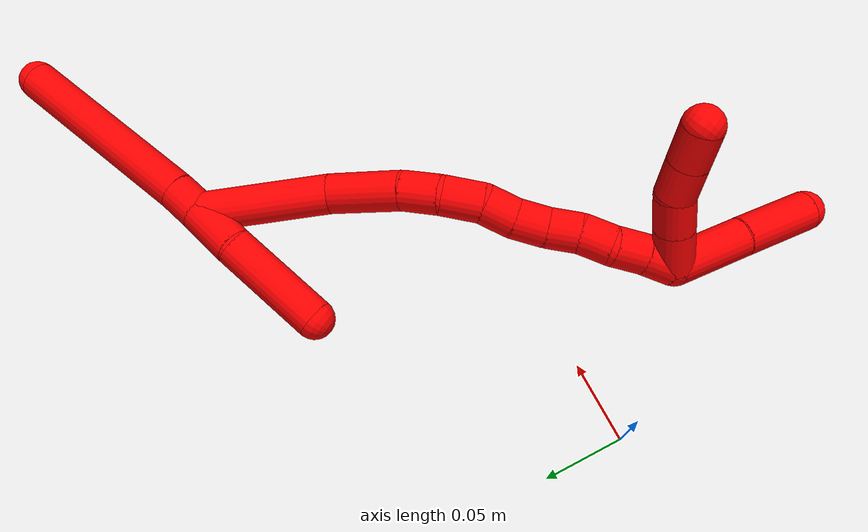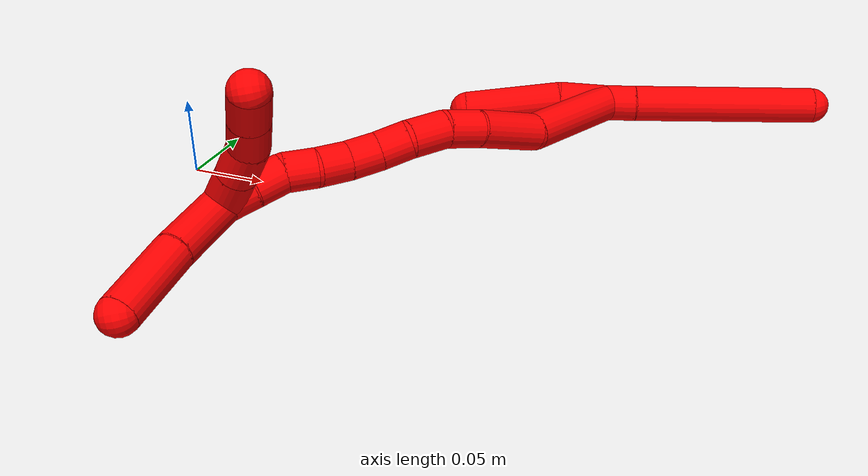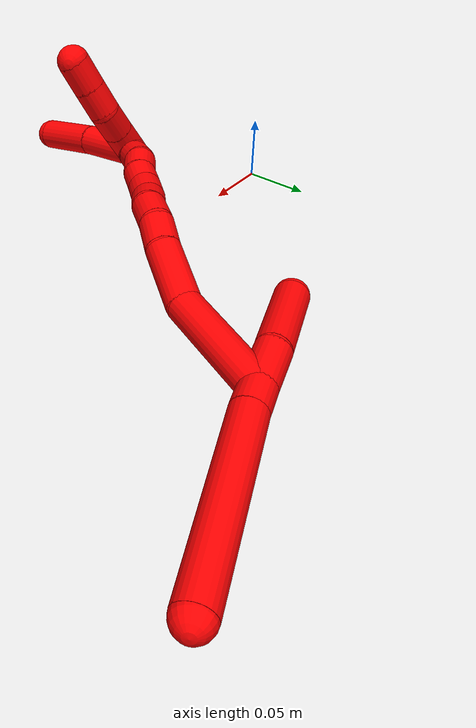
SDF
<sdf version="1.7">
 <world name="default">
  <model name="2">
   <static>0</static>
   <link name="2">
    <collision name="collision-cylinder-e_1_2_8">
     <pose>0.001149 -0.001902 0.010257 0.183331 0.109673 0.010092</pose>
     <geometry><cylinder><radius>0.0125</radius><length>0.02099</length></cylinder></geometry>
     <surface>
      <friction><ode><mu>1.16</mu><mu2>1.16</mu2><slip1>0</slip1><slip2>0</slip2></ode></friction>
      <contact><ode><kp>1e+06</kp><kd>1</kd><max_vel>0</max_vel><min_depth>0.001</min_depth></ode></contact>
     </surface>
    </collision>
    <visual name="visual-cylinder-e_1_2_8">
     <pose>0.001149 -0.001902 0.010257 0.183331 0.109673 0.010092</pose>
     <geometry><cylinder><radius>0.0125</radius><length>0.02099</length></cylinder></geometry>
     <material><ambient>1 0 0 1</ambient></material>
    </visual>
    <collision name="collision-cylinder-e_2_8_6">
     <pose>0.011792 -0.011988 0.08379 0.128633 0.147735 0.009532</pose>
     <geometry><cylinder><radius>0.0125</radius><length>0.12901</length></cylinder></geometry>
     <surface>
      <friction><ode><mu>1.16</mu><mu2>1.16</mu2><slip1>0</slip1><slip2>0</slip2></ode></friction>
      <contact><ode><kp>1e+06</kp><kd>1</kd><max_vel>0</max_vel><min_depth>0.001</min_depth></ode></contact>
     </surface>
    </collision>
    <visual name="visual-cylinder-e_2_8_6">
     <pose>0.011792 -0.011988 0.08379 0.128633 0.147735 0.009532</pose>
     <geometry><cylinder><radius>0.0125</radius><length>0.12901</length></cylinder></geometry>
     <material><ambient>1 0 0 1</ambient></material>
    </visual>
    <collision name="collision-cylinder-e_1_2_9">
     <pose>-0.002209 0.003716 -0.015886 -2.9118 -0.134576 1.05705</pose>
     <geometry><cylinder><radius>0.0125</radius><length>0.032927</length></cylinder></geometry>
     <surface>
      <friction><ode><mu>1.16</mu><mu2>1.16</mu2><slip1>0</slip1><slip2>0</slip2></ode></friction>
      <contact><ode><kp>1e+06</kp><kd>1</kd><max_vel>0</max_vel><min_depth>0.001</min_depth></ode></contact>
     </surface>
    </collision>
    <visual name="visual-cylinder-e_1_2_9">
     <pose>-0.002209 0.003716 -0.015886 -2.9118 -0.134576 1.05705</pose>
     <geometry><cylinder><radius>0.0125</radius><length>0.032927</length></cylinder></geometry>
     <material><ambient>1 0 0 1</ambient></material>
    </visual>
    <collision name="collision-cylinder-e_2_9_5">
     <pose>-0.00462 0.010895 -0.065128 -3.03816 -0.006041 0.116581</pose>
     <geometry><cylinder><radius>0.0125</radius><length>0.067073</length></cylinder></geometry>
     <surface>
      <friction><ode><mu>1.16</mu><mu2>1.16</mu2><slip1>0</slip1><slip2>0</slip2></ode></friction>
      <contact><ode><kp>1e+06</kp><kd>1</kd><max_vel>0</max_vel><min_depth>0.001</min_depth></ode></contact>
     </surface>
    </collision>
    <visual name="visual-cylinder-e_2_9_5">
     <pose>-0.00462 0.010895 -0.065128 -3.03816 -0.006041 0.116581</pose>
     <geometry><cylinder><radius>0.0125</radius><length>0.067073</length></cylinder></geometry>
     <material><ambient>1 0 0 1</ambient></material>
    </visual>
    <collision name="collision-cylinder-e_1_2_10">
     <pose>-0.016681 -0.023309 -0.029139 2.4669 -0.420375 -1.09289</pose>
     <geometry><cylinder><radius>0.0125</radius><length>0.081747</length></cylinder></geometry>
     <surface>
      <friction><ode><mu>1.16</mu><mu2>1.16</mu2><slip1>0</slip1><slip2>0</slip2></ode></friction>
      <contact><ode><kp>1e+06</kp><kd>1</kd><max_vel>0</max_vel><min_depth>0.001</min_depth></ode></contact>
     </surface>
    </collision>
    <visual name="visual-cylinder-e_1_2_10">
     <pose>-0.016681 -0.023309 -0.029139 2.4669 -0.420375 -1.09289</pose>
     <geometry><cylinder><radius>0.0125</radius><length>0.081747</length></cylinder></geometry>
     <material><ambient>1 0 0 1</ambient></material>
    </visual>
    <collision name="collision-cylinder-e_2_10_11">
     <pose>-0.047007 -0.053416 -0.076479 2.78413 -0.612315 -2.10313</pose>
     <geometry><cylinder><radius>0.0125</radius><length>0.047484</length></cylinder></geometry>
     <surface>
      <friction><ode><mu>1.16</mu><mu2>1.16</mu2><slip1>0</slip1><slip2>0</slip2></ode></friction>
      <contact><ode><kp>1e+06</kp><kd>1</kd><max_vel>0</max_vel><min_depth>0.001</min_depth></ode></contact>
     </surface>
    </collision>
    <visual name="visual-cylinder-e_2_10_11">
     <pose>-0.047007 -0.053416 -0.076479 2.78413 -0.612315 -2.10313</pose>
     <geometry><cylinder><radius>0.0125</radius><length>0.047484</length></cylinder></geometry>
     <material><ambient>1 0 0 1</ambient></material>
    </visual>
    <collision name="collision-cylinder-e_3_11_12">
     <pose>-0.066229 -0.063069 -0.105153 2.87549 -0.474513 -2.13055</pose>
     <geometry><cylinder><radius>0.0125</radius><length>0.024409</length></cylinder></geometry>
     <surface>
      <friction><ode><mu>1.16</mu><mu2>1.16</mu2><slip1>0</slip1><slip2>0</slip2></ode></friction>
      <contact><ode><kp>1e+06</kp><kd>1</kd><max_vel>0</max_vel><min_depth>0.001</min_depth></ode></contact>
     </surface>
    </collision>
    <visual name="visual-cylinder-e_3_11_12">
     <pose>-0.066229 -0.063069 -0.105153 2.87549 -0.474513 -2.13055</pose>
     <geometry><cylinder><radius>0.0125</radius><length>0.024409</length></cylinder></geometry>
     <material><ambient>1 0 0 1</ambient></material>
    </visual>
    <collision name="collision-cylinder-e_4_12_13">
     <pose>-0.074795 -0.070457 -0.127032 2.76331 -0.238889 -1.11999</pose>
     <geometry><cylinder><radius>0.0125</radius><length>0.025263</length></cylinder></geometry>
     <surface>
      <friction><ode><mu>1.16</mu><mu2>1.16</mu2><slip1>0</slip1><slip2>0</slip2></ode></friction>
      <contact><ode><kp>1e+06</kp><kd>1</kd><max_vel>0</max_vel><min_depth>0.001</min_depth></ode></contact>
     </surface>
    </collision>
    <visual name="visual-cylinder-e_4_12_13">
     <pose>-0.074795 -0.070457 -0.127032 2.76331 -0.238889 -1.11999</pose>
     <geometry><cylinder><radius>0.0125</radius><length>0.025263</length></cylinder></geometry>
     <material><ambient>1 0 0 1</ambient></material>
    </visual>
    <collision name="collision-cylinder-e_5_13_14">
     <pose>-0.077671 -0.077474 -0.148316 2.89522 0.011059 0.089263</pose>
     <geometry><cylinder><radius>0.0125</radius><length>0.020376</length></cylinder></geometry>
     <surface>
      <friction><ode><mu>1.16</mu><mu2>1.16</mu2><slip1>0</slip1><slip2>0</slip2></ode></friction>
      <contact><ode><kp>1e+06</kp><kd>1</kd><max_vel>0</max_vel><min_depth>0.001</min_depth></ode></contact>
     </surface>
    </collision>
    <visual name="visual-cylinder-e_5_13_14">
     <pose>-0.077671 -0.077474 -0.148316 2.89522 0.011059 0.089263</pose>
     <geometry><cylinder><radius>0.0125</radius><length>0.020376</length></cylinder></geometry>
     <material><ambient>1 0 0 1</ambient></material>
    </visual>
    <collision name="collision-cylinder-e_6_14_15">
     <pose>-0.079246 -0.083218 -0.167833 2.81539 -0.164425 -0.928423</pose>
     <geometry><cylinder><radius>0.0125</radius><length>0.020626</length></cylinder></geometry>
     <surface>
      <friction><ode><mu>1.16</mu><mu2>1.16</mu2><slip1>0</slip1><slip2>0</slip2></ode></friction>
      <contact><ode><kp>1e+06</kp><kd>1</kd><max_vel>0</max_vel><min_depth>0.001</min_depth></ode></contact>
     </surface>
    </collision>
    <visual name="visual-cylinder-e_6_14_15">
     <pose>-0.079246 -0.083218 -0.167833 2.81539 -0.164425 -0.928423</pose>
     <geometry><cylinder><radius>0.0125</radius><length>0.020626</length></cylinder></geometry>
     <material><ambient>1 0 0 1</ambient></material>
    </visual>
    <collision name="collision-cylinder-e_7_15_16">
     <pose>-0.083985 -0.08979 -0.18643 2.78761 -0.309157 -1.43333</pose>
     <geometry><cylinder><radius>0.0125</radius><length>0.020055</length></cylinder></geometry>
     <surface>
      <friction><ode><mu>1.16</mu><mu2>1.16</mu2><slip1>0</slip1><slip2>0</slip2></ode></friction>
      <contact><ode><kp>1e+06</kp><kd>1</kd><max_vel>0</max_vel><min_depth>0.001</min_depth></ode></contact>
     </surface>
    </collision>
    <visual name="visual-cylinder-e_7_15_16">
     <pose>-0.083985 -0.08979 -0.18643 2.78761 -0.309157 -1.43333</pose>
     <geometry><cylinder><radius>0.0125</radius><length>0.020055</length></cylinder></geometry>
     <material><ambient>1 0 0 1</ambient></material>
    </visual>
    <collision name="collision-cylinder-e_8_16_17">
     <pose>-0.089135 -0.094596 -0.205065 2.98828 -0.211201 -1.88745</pose>
     <geometry><cylinder><radius>0.0125</radius><length>0.020024</length></cylinder></geometry>
     <surface>
      <friction><ode><mu>1.16</mu><mu2>1.16</mu2><slip1>0</slip1><slip2>0</slip2></ode></friction>
      <contact><ode><kp>1e+06</kp><kd>1</kd><max_vel>0</max_vel><min_depth>0.001</min_depth></ode></contact>
     </surface>
    </collision>
    <visual name="visual-cylinder-e_8_16_17">
     <pose>-0.089135 -0.094596 -0.205065 2.98828 -0.211201 -1.88745</pose>
     <geometry><cylinder><radius>0.0125</radius><length>0.020024</length></cylinder></geometry>
     <material><ambient>1 0 0 1</ambient></material>
    </visual>
    <collision name="collision-cylinder-e_9_17_18">
     <pose>-0.091753 -0.100436 -0.223738 2.69173 -0.051928 -0.22604</pose>
     <geometry><cylinder><radius>0.0125</radius><length>0.020013</length></cylinder></geometry>
     <surface>
      <friction><ode><mu>1.16</mu><mu2>1.16</mu2><slip1>0</slip1><slip2>0</slip2></ode></friction>
      <contact><ode><kp>1e+06</kp><kd>1</kd><max_vel>0</max_vel><min_depth>0.001</min_depth></ode></contact>
     </surface>
    </collision>
    <visual name="visual-cylinder-e_9_17_18">
     <pose>-0.091753 -0.100436 -0.223738 2.69173 -0.051928 -0.22604</pose>
     <geometry><cylinder><radius>0.0125</radius><length>0.020013</length></cylinder></geometry>
     <material><ambient>1 0 0 1</ambient></material>
    </visual>
    <collision name="collision-cylinder-e_10_18_1">
     <pose>-0.092028 -0.108448 -0.24204 2.76615 0.024452 0.128552</pose>
     <geometry><cylinder><radius>0.0125</radius><length>0.020004</length></cylinder></geometry>
     <surface>
      <friction><ode><mu>1.16</mu><mu2>1.16</mu2><slip1>0</slip1><slip2>0</slip2></ode></friction>
      <contact><ode><kp>1e+06</kp><kd>1</kd><max_vel>0</max_vel><min_depth>0.001</min_depth></ode></contact>
     </surface>
    </collision>
    <visual name="visual-cylinder-e_10_18_1">
     <pose>-0.092028 -0.108448 -0.24204 2.76615 0.024452 0.128552</pose>
     <geometry><cylinder><radius>0.0125</radius><length>0.020004</length></cylinder></geometry>
     <material><ambient>1 0 0 1</ambient></material>
    </visual>
    <collision name="collision-cylinder-e_1_1_19">
     <pose>-0.098089 -0.132309 -0.263269 2.10428 -0.26267 -0.454851</pose>
     <geometry><cylinder><radius>0.0125</radius><length>0.048571</length></cylinder></geometry>
     <surface>
      <friction><ode><mu>1.16</mu><mu2>1.16</mu2><slip1>0</slip1><slip2>0</slip2></ode></friction>
      <contact><ode><kp>1e+06</kp><kd>1</kd><max_vel>0</max_vel><min_depth>0.001</min_depth></ode></contact>
     </surface>
    </collision>
    <visual name="visual-cylinder-e_1_1_19">
     <pose>-0.098089 -0.132309 -0.263269 2.10428 -0.26267 -0.454851</pose>
     <geometry><cylinder><radius>0.0125</radius><length>0.048571</length></cylinder></geometry>
     <material><ambient>1 0 0 1</ambient></material>
    </visual>
    <collision name="collision-cylinder-e_2_19_4">
     <pose>-0.10906 -0.174463 -0.287733 2.08954 -0.182396 -0.312462</pose>
     <geometry><cylinder><radius>0.0125</radius><length>0.051429</length></cylinder></geometry>
     <surface>
      <friction><ode><mu>1.16</mu><mu2>1.16</mu2><slip1>0</slip1><slip2>0</slip2></ode></friction>
      <contact><ode><kp>1e+06</kp><kd>1</kd><max_vel>0</max_vel><min_depth>0.001</min_depth></ode></contact>
     </surface>
    </collision>
    <visual name="visual-cylinder-e_2_19_4">
     <pose>-0.10906 -0.174463 -0.287733 2.08954 -0.182396 -0.312462</pose>
     <geometry><cylinder><radius>0.0125</radius><length>0.051429</length></cylinder></geometry>
     <material><ambient>1 0 0 1</ambient></material>
    </visual>
    <collision name="collision-cylinder-e_1_1_20">
     <pose>-0.103694 -0.112635 -0.243845 0.069301 -1.00793 -0.038227</pose>
     <geometry><cylinder><radius>0.0125</radius><length>0.028166</length></cylinder></geometry>
     <surface>
      <friction><ode><mu>1.16</mu><mu2>1.16</mu2><slip1>0</slip1><slip2>0</slip2></ode></friction>
      <contact><ode><kp>1e+06</kp><kd>1</kd><max_vel>0</max_vel><min_depth>0.001</min_depth></ode></contact>
     </surface>
    </collision>
    <visual name="visual-cylinder-e_1_1_20">
     <pose>-0.103694 -0.112635 -0.243845 0.069301 -1.00793 -0.038227</pose>
     <geometry><cylinder><radius>0.0125</radius><length>0.028166</length></cylinder></geometry>
     <material><ambient>1 0 0 1</ambient></material>
    </visual>
    <collision name="collision-cylinder-e_2_20_21">
     <pose>-0.125821 -0.113421 -0.230098 0.042427 -1.02133 -0.023771</pose>
     <geometry><cylinder><radius>0.0125</radius><length>0.023961</length></cylinder></geometry>
     <surface>
      <friction><ode><mu>1.16</mu><mu2>1.16</mu2><slip1>0</slip1><slip2>0</slip2></ode></friction>
      <contact><ode><kp>1e+06</kp><kd>1</kd><max_vel>0</max_vel><min_depth>0.001</min_depth></ode></contact>
     </surface>
    </collision>
    <visual name="visual-cylinder-e_2_20_21">
     <pose>-0.125821 -0.113421 -0.230098 0.042427 -1.02133 -0.023771</pose>
     <geometry><cylinder><radius>0.0125</radius><length>0.023961</length></cylinder></geometry>
     <material><ambient>1 0 0 1</ambient></material>
    </visual>
    <collision name="collision-cylinder-e_3_21_22">
     <pose>-0.147238 -0.115015 -0.220726 0.402581 -1.27676 -0.300545</pose>
     <geometry><cylinder><radius>0.0125</radius><length>0.023402</length></cylinder></geometry>
     <surface>
      <friction><ode><mu>1.16</mu><mu2>1.16</mu2><slip1>0</slip1><slip2>0</slip2></ode></friction>
      <contact><ode><kp>1e+06</kp><kd>1</kd><max_vel>0</max_vel><min_depth>0.001</min_depth></ode></contact>
     </surface>
    </collision>
    <visual name="visual-cylinder-e_3_21_22">
     <pose>-0.147238 -0.115015 -0.220726 0.402581 -1.27676 -0.300545</pose>
     <geometry><cylinder><radius>0.0125</radius><length>0.023402</length></cylinder></geometry>
     <material><ambient>1 0 0 1</ambient></material>
    </visual>
    <collision name="collision-cylinder-e_4_22_3">
     <pose>-0.170178 -0.117642 -0.214422 0.387236 -1.28587 -0.291678</pose>
     <geometry><cylinder><radius>0.0125</radius><length>0.02447</length></cylinder></geometry>
     <surface>
      <friction><ode><mu>1.16</mu><mu2>1.16</mu2><slip1>0</slip1><slip2>0</slip2></ode></friction>
      <contact><ode><kp>1e+06</kp><kd>1</kd><max_vel>0</max_vel><min_depth>0.001</min_depth></ode></contact>
     </surface>
    </collision>
    <visual name="visual-cylinder-e_4_22_3">
     <pose>-0.170178 -0.117642 -0.214422 0.387236 -1.28587 -0.291678</pose>
     <geometry><cylinder><radius>0.0125</radius><length>0.02447</length></cylinder></geometry>
     <material><ambient>1 0 0 1</ambient></material>
    </visual>
    <collision name="collision-sphere-3">
     <pose>-0.18192 -0.118941 -0.211237 0 -0 0</pose>
     <geometry><sphere><radius>0.0125</radius></sphere></geometry>
     <surface>
      <friction><ode><mu>1.16</mu><mu2>1.16</mu2><slip1>0</slip1><slip2>0</slip2></ode></friction>
      <contact><ode><kp>1e+06</kp><kd>1</kd><max_vel>0</max_vel><min_depth>0.001</min_depth></ode></contact>
     </surface>
    </collision>
    <visual name="visual-sphere-3">
     <pose>-0.18192 -0.118941 -0.211237 0 -0 0</pose>
     <geometry><sphere><radius>0.0125</radius></sphere></geometry>
     <material><ambient>1 0 0 1</ambient></material>
    </visual>
    <collision name="collision-sphere-22">
     <pose>-0.158437 -0.116344 -0.217606 0 -0 0</pose>
     <geometry><sphere><radius>0.0125</radius></sphere></geometry>
     <surface>
      <friction><ode><mu>1.16</mu><mu2>1.16</mu2><slip1>0</slip1><slip2>0</slip2></ode></friction>
      <contact><ode><kp>1e+06</kp><kd>1</kd><max_vel>0</max_vel><min_depth>0.001</min_depth></ode></contact>
     </surface>
    </collision>
    <visual name="visual-sphere-22">
     <pose>-0.158437 -0.116344 -0.217606 0 -0 0</pose>
     <geometry><sphere><radius>0.0125</radius></sphere></geometry>
     <material><ambient>1 0 0 1</ambient></material>
    </visual>
    <collision name="collision-sphere-21">
     <pose>-0.136039 -0.113686 -0.223846 0 -0 0</pose>
     <geometry><sphere><radius>0.0125</radius></sphere></geometry>
     <surface>
      <friction><ode><mu>1.16</mu><mu2>1.16</mu2><slip1>0</slip1><slip2>0</slip2></ode></friction>
      <contact><ode><kp>1e+06</kp><kd>1</kd><max_vel>0</max_vel><min_depth>0.001</min_depth></ode></contact>
     </surface>
    </collision>
    <visual name="visual-sphere-21">
     <pose>-0.136039 -0.113686 -0.223846 0 -0 0</pose>
     <geometry><sphere><radius>0.0125</radius></sphere></geometry>
     <material><ambient>1 0 0 1</ambient></material>
    </visual>
    <collision name="collision-sphere-20">
     <pose>-0.115604 -0.113155 -0.236349 0 -0 0</pose>
     <geometry><sphere><radius>0.0125</radius></sphere></geometry>
     <surface>
      <friction><ode><mu>1.16</mu><mu2>1.16</mu2><slip1>0</slip1><slip2>0</slip2></ode></friction>
      <contact><ode><kp>1e+06</kp><kd>1</kd><max_vel>0</max_vel><min_depth>0.001</min_depth></ode></contact>
     </surface>
    </collision>
    <visual name="visual-sphere-20">
     <pose>-0.115604 -0.113155 -0.236349 0 -0 0</pose>
     <geometry><sphere><radius>0.0125</radius></sphere></geometry>
     <material><ambient>1 0 0 1</ambient></material>
    </visual>
    <collision name="collision-sphere-4">
     <pose>-0.113724 -0.196424 -0.30027 0 -0 0</pose>
     <geometry><sphere><radius>0.0125</radius></sphere></geometry>
     <surface>
      <friction><ode><mu>1.16</mu><mu2>1.16</mu2><slip1>0</slip1><slip2>0</slip2></ode></friction>
      <contact><ode><kp>1e+06</kp><kd>1</kd><max_vel>0</max_vel><min_depth>0.001</min_depth></ode></contact>
     </surface>
    </collision>
    <visual name="visual-sphere-4">
     <pose>-0.113724 -0.196424 -0.30027 0 -0 0</pose>
     <geometry><sphere><radius>0.0125</radius></sphere></geometry>
     <material><ambient>1 0 0 1</ambient></material>
    </visual>
    <collision name="collision-sphere-10">
     <pose>-0.033361 -0.046618 -0.058278 0 -0 0</pose>
     <geometry><sphere><radius>0.0125</radius></sphere></geometry>
     <surface>
      <friction><ode><mu>1.16</mu><mu2>1.16</mu2><slip1>0</slip1><slip2>0</slip2></ode></friction>
      <contact><ode><kp>1e+06</kp><kd>1</kd><max_vel>0</max_vel><min_depth>0.001</min_depth></ode></contact>
     </surface>
    </collision>
    <visual name="visual-sphere-10">
     <pose>-0.033361 -0.046618 -0.058278 0 -0 0</pose>
     <geometry><sphere><radius>0.0125</radius></sphere></geometry>
     <material><ambient>1 0 0 1</ambient></material>
    </visual>
    <collision name="collision-sphere-5">
     <pose>-0.004823 0.014357 -0.098485 0 -0 0</pose>
     <geometry><sphere><radius>0.0125</radius></sphere></geometry>
     <surface>
      <friction><ode><mu>1.16</mu><mu2>1.16</mu2><slip1>0</slip1><slip2>0</slip2></ode></friction>
      <contact><ode><kp>1e+06</kp><kd>1</kd><max_vel>0</max_vel><min_depth>0.001</min_depth></ode></contact>
     </surface>
    </collision>
    <visual name="visual-sphere-5">
     <pose>-0.004823 0.014357 -0.098485 0 -0 0</pose>
     <geometry><sphere><radius>0.0125</radius></sphere></geometry>
     <material><ambient>1 0 0 1</ambient></material>
    </visual>
    <collision name="collision-sphere-6">
     <pose>0.021287 -0.020173 0.147065 0 -0 0</pose>
     <geometry><sphere><radius>0.0125</radius></sphere></geometry>
     <surface>
      <friction><ode><mu>1.16</mu><mu2>1.16</mu2><slip1>0</slip1><slip2>0</slip2></ode></friction>
      <contact><ode><kp>1e+06</kp><kd>1</kd><max_vel>0</max_vel><min_depth>0.001</min_depth></ode></contact>
     </surface>
    </collision>
    <visual name="visual-sphere-6">
     <pose>0.021287 -0.020173 0.147065 0 -0 0</pose>
     <geometry><sphere><radius>0.0125</radius></sphere></geometry>
     <material><ambient>1 0 0 1</ambient></material>
    </visual>
    <collision name="collision-sphere-9">
     <pose>-0.004418 0.007432 -0.031771 0 -0 0</pose>
     <geometry><sphere><radius>0.0125</radius></sphere></geometry>
     <surface>
      <friction><ode><mu>1.16</mu><mu2>1.16</mu2><slip1>0</slip1><slip2>0</slip2></ode></friction>
      <contact><ode><kp>1e+06</kp><kd>1</kd><max_vel>0</max_vel><min_depth>0.001</min_depth></ode></contact>
     </surface>
    </collision>
    <visual name="visual-sphere-9">
     <pose>-0.004418 0.007432 -0.031771 0 -0 0</pose>
     <geometry><sphere><radius>0.0125</radius></sphere></geometry>
     <material><ambient>1 0 0 1</ambient></material>
    </visual>
    <collision name="collision-sphere-2">
     <geometry><sphere><radius>0.0125</radius></sphere></geometry>
     <surface>
      <friction><ode><mu>1.16</mu><mu2>1.16</mu2><slip1>0</slip1><slip2>0</slip2></ode></friction>
      <contact><ode><kp>1e+06</kp><kd>1</kd><max_vel>0</max_vel><min_depth>0.001</min_depth></ode></contact>
     </surface>
    </collision>
    <visual name="visual-sphere-2">
     <geometry><sphere><radius>0.0125</radius></sphere></geometry>
     <material><ambient>1 0 0 1</ambient></material>
    </visual>
    <collision name="collision-sphere-19">
     <pose>-0.104396 -0.152502 -0.275195 0 -0 0</pose>
     <geometry><sphere><radius>0.0125</radius></sphere></geometry>
     <surface>
      <friction><ode><mu>1.16</mu><mu2>1.16</mu2><slip1>0</slip1><slip2>0</slip2></ode></friction>
      <contact><ode><kp>1e+06</kp><kd>1</kd><max_vel>0</max_vel><min_depth>0.001</min_depth></ode></contact>
     </surface>
    </collision>
    <visual name="visual-sphere-19">
     <pose>-0.104396 -0.152502 -0.275195 0 -0 0</pose>
     <geometry><sphere><radius>0.0125</radius></sphere></geometry>
     <material><ambient>1 0 0 1</ambient></material>
    </visual>
    <collision name="collision-sphere-8">
     <pose>0.002297 -0.003804 0.020515 0 -0 0</pose>
     <geometry><sphere><radius>0.0125</radius></sphere></geometry>
     <surface>
      <friction><ode><mu>1.16</mu><mu2>1.16</mu2><slip1>0</slip1><slip2>0</slip2></ode></friction>
      <contact><ode><kp>1e+06</kp><kd>1</kd><max_vel>0</max_vel><min_depth>0.001</min_depth></ode></contact>
     </surface>
    </collision>
    <visual name="visual-sphere-8">
     <pose>0.002297 -0.003804 0.020515 0 -0 0</pose>
     <geometry><sphere><radius>0.0125</radius></sphere></geometry>
     <material><ambient>1 0 0 1</ambient></material>
    </visual>
    <collision name="collision-sphere-11">
     <pose>-0.060653 -0.060214 -0.094679 0 -0 0</pose>
     <geometry><sphere><radius>0.0125</radius></sphere></geometry>
     <surface>
      <friction><ode><mu>1.16</mu><mu2>1.16</mu2><slip1>0</slip1><slip2>0</slip2></ode></friction>
      <contact><ode><kp>1e+06</kp><kd>1</kd><max_vel>0</max_vel><min_depth>0.001</min_depth></ode></contact>
     </surface>
    </collision>
    <visual name="visual-sphere-11">
     <pose>-0.060653 -0.060214 -0.094679 0 -0 0</pose>
     <geometry><sphere><radius>0.0125</radius></sphere></geometry>
     <material><ambient>1 0 0 1</ambient></material>
    </visual>
    <collision name="collision-sphere-12">
     <pose>-0.071806 -0.065924 -0.115627 0 -0 0</pose>
     <geometry><sphere><radius>0.0125</radius></sphere></geometry>
     <surface>
      <friction><ode><mu>1.16</mu><mu2>1.16</mu2><slip1>0</slip1><slip2>0</slip2></ode></friction>
      <contact><ode><kp>1e+06</kp><kd>1</kd><max_vel>0</max_vel><min_depth>0.001</min_depth></ode></contact>
     </surface>
    </collision>
    <visual name="visual-sphere-12">
     <pose>-0.071806 -0.065924 -0.115627 0 -0 0</pose>
     <geometry><sphere><radius>0.0125</radius></sphere></geometry>
     <material><ambient>1 0 0 1</ambient></material>
    </visual>
    <collision name="collision-sphere-13">
     <pose>-0.077783 -0.074989 -0.138437 0 -0 0</pose>
     <geometry><sphere><radius>0.0125</radius></sphere></geometry>
     <surface>
      <friction><ode><mu>1.16</mu><mu2>1.16</mu2><slip1>0</slip1><slip2>0</slip2></ode></friction>
      <contact><ode><kp>1e+06</kp><kd>1</kd><max_vel>0</max_vel><min_depth>0.001</min_depth></ode></contact>
     </surface>
    </collision>
    <visual name="visual-sphere-13">
     <pose>-0.077783 -0.074989 -0.138437 0 -0 0</pose>
     <geometry><sphere><radius>0.0125</radius></sphere></geometry>
     <material><ambient>1 0 0 1</ambient></material>
    </visual>
    <collision name="collision-sphere-14">
     <pose>-0.077558 -0.079958 -0.158196 0 -0 0</pose>
     <geometry><sphere><radius>0.0125</radius></sphere></geometry>
     <surface>
      <friction><ode><mu>1.16</mu><mu2>1.16</mu2><slip1>0</slip1><slip2>0</slip2></ode></friction>
      <contact><ode><kp>1e+06</kp><kd>1</kd><max_vel>0</max_vel><min_depth>0.001</min_depth></ode></contact>
     </surface>
    </collision>
    <visual name="visual-sphere-14">
     <pose>-0.077558 -0.079958 -0.158196 0 -0 0</pose>
     <geometry><sphere><radius>0.0125</radius></sphere></geometry>
     <material><ambient>1 0 0 1</ambient></material>
    </visual>
    <collision name="collision-sphere-15">
     <pose>-0.080934 -0.086479 -0.177471 0 -0 0</pose>
     <geometry><sphere><radius>0.0125</radius></sphere></geometry>
     <surface>
      <friction><ode><mu>1.16</mu><mu2>1.16</mu2><slip1>0</slip1><slip2>0</slip2></ode></friction>
      <contact><ode><kp>1e+06</kp><kd>1</kd><max_vel>0</max_vel><min_depth>0.001</min_depth></ode></contact>
     </surface>
    </collision>
    <visual name="visual-sphere-15">
     <pose>-0.080934 -0.086479 -0.177471 0 -0 0</pose>
     <geometry><sphere><radius>0.0125</radius></sphere></geometry>
     <material><ambient>1 0 0 1</ambient></material>
    </visual>
    <collision name="collision-sphere-16">
     <pose>-0.087036 -0.093101 -0.19539 0 -0 0</pose>
     <geometry><sphere><radius>0.0125</radius></sphere></geometry>
     <surface>
      <friction><ode><mu>1.16</mu><mu2>1.16</mu2><slip1>0</slip1><slip2>0</slip2></ode></friction>
      <contact><ode><kp>1e+06</kp><kd>1</kd><max_vel>0</max_vel><min_depth>0.001</min_depth></ode></contact>
     </surface>
    </collision>
    <visual name="visual-sphere-16">
     <pose>-0.087036 -0.093101 -0.19539 0 -0 0</pose>
     <geometry><sphere><radius>0.0125</radius></sphere></geometry>
     <material><ambient>1 0 0 1</ambient></material>
    </visual>
    <collision name="collision-sphere-17">
     <pose>-0.091234 -0.096091 -0.214739 0 -0 0</pose>
     <geometry><sphere><radius>0.0125</radius></sphere></geometry>
     <surface>
      <friction><ode><mu>1.16</mu><mu2>1.16</mu2><slip1>0</slip1><slip2>0</slip2></ode></friction>
      <contact><ode><kp>1e+06</kp><kd>1</kd><max_vel>0</max_vel><min_depth>0.001</min_depth></ode></contact>
     </surface>
    </collision>
    <visual name="visual-sphere-17">
     <pose>-0.091234 -0.096091 -0.214739 0 -0 0</pose>
     <geometry><sphere><radius>0.0125</radius></sphere></geometry>
     <material><ambient>1 0 0 1</ambient></material>
    </visual>
    <collision name="collision-sphere-18">
     <pose>-0.092273 -0.104782 -0.232737 0 -0 0</pose>
     <geometry><sphere><radius>0.0125</radius></sphere></geometry>
     <surface>
      <friction><ode><mu>1.16</mu><mu2>1.16</mu2><slip1>0</slip1><slip2>0</slip2></ode></friction>
      <contact><ode><kp>1e+06</kp><kd>1</kd><max_vel>0</max_vel><min_depth>0.001</min_depth></ode></contact>
     </surface>
    </collision>
    <visual name="visual-sphere-18">
     <pose>-0.092273 -0.104782 -0.232737 0 -0 0</pose>
     <geometry><sphere><radius>0.0125</radius></sphere></geometry>
     <material><ambient>1 0 0 1</ambient></material>
    </visual>
    <collision name="collision-sphere-1">
     <pose>-0.091783 -0.112115 -0.251342 0 -0 0</pose>
     <geometry><sphere><radius>0.0125</radius></sphere></geometry>
     <surface>
      <friction><ode><mu>1.16</mu><mu2>1.16</mu2><slip1>0</slip1><slip2>0</slip2></ode></friction>
      <contact><ode><kp>1e+06</kp><kd>1</kd><max_vel>0</max_vel><min_depth>0.001</min_depth></ode></contact>
     </surface>
    </collision>
    <visual name="visual-sphere-1">
     <pose>-0.091783 -0.112115 -0.251342 0 -0 0</pose>
     <geometry><sphere><radius>0.0125</radius></sphere></geometry>
     <material><ambient>1 0 0 1</ambient></material>
    </visual>
    <inertial>
     <pose>-0.053628 -0.062031 -0.106244 0 -0 0</pose>
     <mass>0.75</mass>
     <inertia><ixx>0.00019</ixx><ixy>0</ixy><ixz>0</ixz><iyy>7.9e-05</iyy><iyz>0</iyz><izz>7.6e-05</izz></inertia>
    </inertial>
   </link>
   <pose>0.237296 0.163136 0.017354 1.16679 1.18783 1.66636</pose>
  </model>
 </world>
</sdf>
